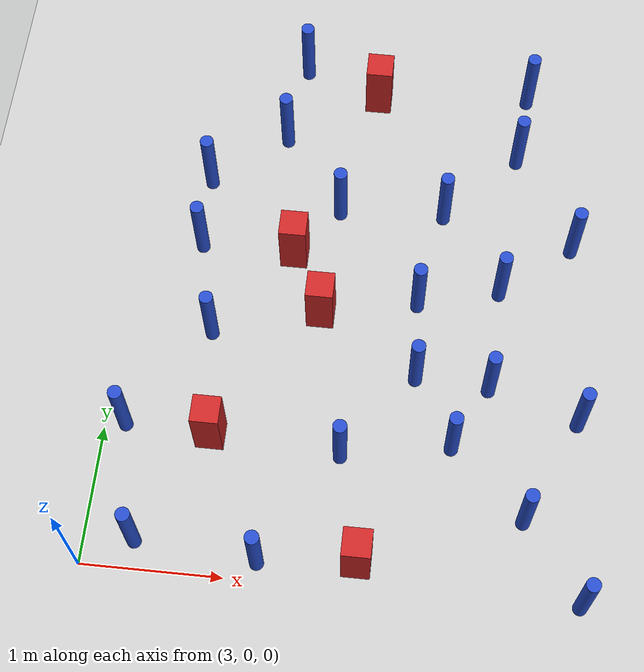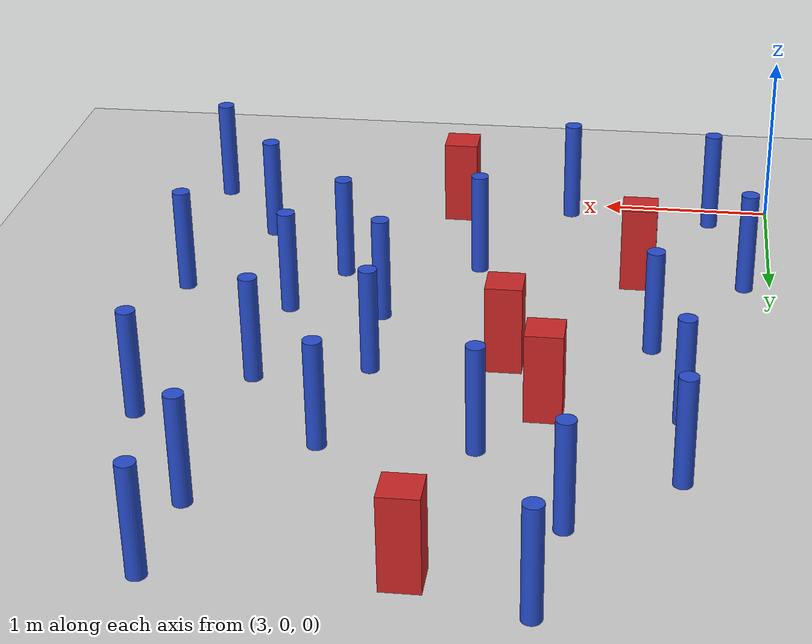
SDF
<sdf version="1.6">
 <world name="default">
  <model name="ground_plane">
   <static>1</static>
   <link name="link">
    <collision name="collision">
     <geometry><plane><normal>0 0 1</normal><size>100 100</size></plane></geometry>
     <surface><friction><ode><mu>100</mu><mu2>50</mu2></ode></friction></surface>
    </collision>
    <visual name="visual">
     <cast_shadows>0</cast_shadows>
     <geometry><plane><normal>0 0 1</normal><size>100 100</size></plane></geometry>
     <material>
      <ambient>1.0 1.0 1.0 1.0</ambient>
      <diffuse>0.8 0.8 0.8 1.0</diffuse>
      <specular>0.01 0.01 0.01 1.000000</specular>
     </material>
    </visual>
   </link>
  </model>
  <model name="pole_obstacle4">
   <static>true</static>
   <pose>3.4753207857 3.11598202601 7.38925637345e-09 -8.47170692798e-08 1.24976764939e-08 -1.74513093025e-07</pose>
   <link name="link">
    <pose>0 0 0.3 0 -0 0</pose>
    <inertial>
     <mass>1</mass>
     <inertia><ixx>0.145833</ixx><ixy>0</ixy><ixz>0</ixz><iyy>0.145833</iyy><iyz>0</iyz><izz>0.125</izz></inertia>
    </inertial>
    <collision name="collision">
     <geometry><cylinder><radius>0.05</radius><length>.6</length></cylinder></geometry>
    </collision>
    <visual name="visual">
     <geometry><cylinder><radius>0.05</radius><length>.6</length></cylinder></geometry>
     <material>
      <script><name>Gazebo/Blue</name><uri>file://media/materials/scripts/gazebo.material</uri></script>
     </material>
    </visual>
   </link>
  </model>
  <model name="square_post_obstacle7">
   <static>true</static>
   <pose>4.19259915789 2.54085804016 1.91545236811e-07 -7.35059704564e-06 1.12565212e-07 2.39332434364e-05</pose>
   <link name="link">
    <pose>0 0 0.25 0 -0 0</pose>
    <inertial>
     <mass>100</mass>
     <inertia>
      <ixx>0.166667</ixx>
      <ixy>0</ixy>
      <ixz>0</ixz>
      <iyy>0.166667</iyy>
      <iyz>0</iyz>
      <izz>0.166667</izz>
     </inertia>
    </inertial>
    <collision name="collision"><geometry><box><size>.2 .2 .5</size></box></geometry></collision>
    <visual name="visual">
     <geometry><box><size>.2 .2 .5</size></box></geometry>
     <material>
      <script><name>Gazebo/Red</name><uri>file://media/materials/scripts/gazebo.material</uri></script>
     </material>
    </visual>
   </link>
  </model>
  <model name="pole_obstacle12">
   <static>true</static>
   <pose>6.36594659354 1.35749647897 7.38925637345e-09 -8.471706928e-08 1.24976765134e-08 -1.74513093015e-07</pose>
   <link name="link">
    <pose>0 0 0.3 0 -0 0</pose>
    <inertial>
     <mass>1</mass>
     <inertia><ixx>0.145833</ixx><ixy>0</ixy><ixz>0</ixz><iyy>0.145833</iyy><iyz>0</iyz><izz>0.125</izz></inertia>
    </inertial>
    <collision name="collision">
     <geometry><cylinder><radius>0.05</radius><length>.6</length></cylinder></geometry>
    </collision>
    <visual name="visual">
     <geometry><cylinder><radius>0.05</radius><length>.6</length></cylinder></geometry>
     <material>
      <script><name>Gazebo/Blue</name><uri>file://media/materials/scripts/gazebo.material</uri></script>
     </material>
    </visual>
   </link>
  </model>
  <model name="pole_obstacle15">
   <static>true</static>
   <pose>3.6611542165 1.82092345411 7.38925637345e-09 -8.471706928e-08 1.24976765152e-08 -1.74513093012e-07</pose>
   <link name="link">
    <pose>0 0 0.3 0 -0 0</pose>
    <inertial>
     <mass>1</mass>
     <inertia><ixx>0.145833</ixx><ixy>0</ixy><ixz>0</ixz><iyy>0.145833</iyy><iyz>0</iyz><izz>0.125</izz></inertia>
    </inertial>
    <collision name="collision">
     <geometry><cylinder><radius>0.05</radius><length>.6</length></cylinder></geometry>
    </collision>
    <visual name="visual">
     <geometry><cylinder><radius>0.05</radius><length>.6</length></cylinder></geometry>
     <material>
      <script><name>Gazebo/Blue</name><uri>file://media/materials/scripts/gazebo.material</uri></script>
     </material>
    </visual>
   </link>
  </model>
  <model name="pole_obstacle21">
   <static>true</static>
   <pose>5.29207884988 2.97407495505 7.38925637345e-09 -8.47170692798e-08 1.24976764937e-08 -1.74513093023e-07</pose>
   <link name="link">
    <pose>0 0 0.3 0 -0 0</pose>
    <inertial>
     <mass>1</mass>
     <inertia><ixx>0.145833</ixx><ixy>0</ixy><ixz>0</ixz><iyy>0.145833</iyy><iyz>0</iyz><izz>0.125</izz></inertia>
    </inertial>
    <collision name="collision">
     <geometry><cylinder><radius>0.05</radius><length>.6</length></cylinder></geometry>
    </collision>
    <visual name="visual">
     <geometry><cylinder><radius>0.05</radius><length>.6</length></cylinder></geometry>
     <material>
      <script><name>Gazebo/Blue</name><uri>file://media/materials/scripts/gazebo.material</uri></script>
     </material>
    </visual>
   </link>
  </model>
  <model name="pole_obstacle22">
   <static>true</static>
   <pose>5.47900707221 1.08855759464 7.38925637345e-09 -8.471706928e-08 1.24976765134e-08 -1.74513093015e-07</pose>
   <link name="link">
    <pose>0 0 0.3 0 -0 0</pose>
    <inertial>
     <mass>1</mass>
     <inertia><ixx>0.145833</ixx><ixy>0</ixy><ixz>0</ixz><iyy>0.145833</iyy><iyz>0</iyz><izz>0.125</izz></inertia>
    </inertial>
    <collision name="collision">
     <geometry><cylinder><radius>0.05</radius><length>.6</length></cylinder></geometry>
    </collision>
    <visual name="visual">
     <geometry><cylinder><radius>0.05</radius><length>.6</length></cylinder></geometry>
     <material>
      <script><name>Gazebo/Blue</name><uri>file://media/materials/scripts/gazebo.material</uri></script>
     </material>
    </visual>
   </link>
  </model>
  <model name="pole_obstacle34">
   <static>true</static>
   <pose>5.82847256001 3.53852207408 7.38925637345e-09 -8.47170692798e-08 1.24976764937e-08 -1.74513093023e-07</pose>
   <link name="link">
    <pose>0 0 0.3 0 -0 0</pose>
    <inertial>
     <mass>1</mass>
     <inertia><ixx>0.145833</ixx><ixy>0</ixy><ixz>0</ixz><iyy>0.145833</iyy><iyz>0</iyz><izz>0.125</izz></inertia>
    </inertial>
    <collision name="collision">
     <geometry><cylinder><radius>0.05</radius><length>.6</length></cylinder></geometry>
    </collision>
    <visual name="visual">
     <geometry><cylinder><radius>0.05</radius><length>.6</length></cylinder></geometry>
     <material>
      <script><name>Gazebo/Blue</name><uri>file://media/materials/scripts/gazebo.material</uri></script>
     </material>
    </visual>
   </link>
  </model>
  <model name="pole_obstacle78">
   <static>true</static>
   <pose>6.01016642665 0.596015054051 7.38925637345e-09 -8.47170692799e-08 1.24976765038e-08 -1.74513093018e-07</pose>
   <link name="link">
    <pose>0 0 0.3 0 -0 0</pose>
    <inertial>
     <mass>1</mass>
     <inertia><ixx>0.145833</ixx><ixy>0</ixy><ixz>0</ixz><iyy>0.145833</iyy><iyz>0</iyz><izz>0.125</izz></inertia>
    </inertial>
    <collision name="collision">
     <geometry><cylinder><radius>0.05</radius><length>.6</length></cylinder></geometry>
    </collision>
    <visual name="visual">
     <geometry><cylinder><radius>0.05</radius><length>.6</length></cylinder></geometry>
     <material>
      <script><name>Gazebo/Blue</name><uri>file://media/materials/scripts/gazebo.material</uri></script>
     </material>
    </visual>
   </link>
  </model>
  <model name="pole_obstacle96">
   <static>true</static>
   <pose>3.35391686732 0.193663910173 7.38925637345e-09 -8.47170692801e-08 1.24976765195e-08 -1.74513093011e-07</pose>
   <link name="link">
    <pose>0 0 0.3 0 -0 0</pose>
    <inertial>
     <mass>1</mass>
     <inertia><ixx>0.145833</ixx><ixy>0</ixy><ixz>0</ixz><iyy>0.145833</iyy><iyz>0</iyz><izz>0.125</izz></inertia>
    </inertial>
    <collision name="collision">
     <geometry><cylinder><radius>0.05</radius><length>.6</length></cylinder></geometry>
    </collision>
    <visual name="visual">
     <geometry><cylinder><radius>0.05</radius><length>.6</length></cylinder></geometry>
     <material>
      <script><name>Gazebo/Blue</name><uri>file://media/materials/scripts/gazebo.material</uri></script>
     </material>
    </visual>
   </link>
  </model>
  <model name="square_post_obstacle95">
   <static>true</static>
   <pose>4.70060899639 4.02054487223 1.91545236811e-07 -7.35059704564e-06 1.12565212e-07 2.39332434364e-05</pose>
   <link name="link">
    <pose>0 0 0.25 0 -0 0</pose>
    <inertial>
     <mass>100</mass>
     <inertia>
      <ixx>0.166667</ixx>
      <ixy>0</ixy>
      <ixz>0</ixz>
      <iyy>0.166667</iyy>
      <iyz>0</iyz>
      <izz>0.166667</izz>
     </inertia>
    </inertial>
    <collision name="collision"><geometry><box><size>.2 .2 .5</size></box></geometry></collision>
    <visual name="visual">
     <geometry><box><size>.2 .2 .5</size></box></geometry>
     <material>
      <script><name>Gazebo/Red</name><uri>file://media/materials/scripts/gazebo.material</uri></script>
     </material>
    </visual>
   </link>
  </model>
  <model name="pole_obstacle119">
   <static>true</static>
   <pose>4.01920119011 3.56018556924 7.38925637345e-09 -8.47170692799e-08 1.24976765e-08 -1.7451309302e-07</pose>
   <link name="link">
    <pose>0 0 0.3 0 -0 0</pose>
    <inertial>
     <mass>1</mass>
     <inertia><ixx>0.145833</ixx><ixy>0</ixy><ixz>0</ixz><iyy>0.145833</iyy><iyz>0</iyz><izz>0.125</izz></inertia>
    </inertial>
    <collision name="collision">
     <geometry><cylinder><radius>0.05</radius><length>.6</length></cylinder></geometry>
    </collision>
    <visual name="visual">
     <geometry><cylinder><radius>0.05</radius><length>.6</length></cylinder></geometry>
     <material>
      <script><name>Gazebo/Blue</name><uri>file://media/materials/scripts/gazebo.material</uri></script>
     </material>
    </visual>
   </link>
  </model>
  <model name="pole_obstacle131">
   <static>true</static>
   <pose>5.75321398918 2.354576415 7.38925637345e-09 -8.47170692798e-08 1.24976764937e-08 -1.74513093023e-07</pose>
   <link name="link">
    <pose>0 0 0.3 0 -0 0</pose>
    <inertial>
     <mass>1</mass>
     <inertia><ixx>0.145833</ixx><ixy>0</ixy><ixz>0</ixz><iyy>0.145833</iyy><iyz>0</iyz><izz>0.125</izz></inertia>
    </inertial>
    <collision name="collision">
     <geometry><cylinder><radius>0.05</radius><length>.6</length></cylinder></geometry>
    </collision>
    <visual name="visual">
     <geometry><cylinder><radius>0.05</radius><length>.6</length></cylinder></geometry>
     <material>
      <script><name>Gazebo/Blue</name><uri>file://media/materials/scripts/gazebo.material</uri></script>
     </material>
    </visual>
   </link>
  </model>
  <model name="square_post_obstacle123">
   <static>true</static>
   <pose>3.76766822107 1.02142883052 1.91545236811e-07 -7.35059704564e-06 1.12565212e-07 2.39332434364e-05</pose>
   <link name="link">
    <pose>0 0 0.25 0 -0 0</pose>
    <inertial>
     <mass>100</mass>
     <inertia>
      <ixx>0.166667</ixx>
      <ixy>0</ixy>
      <ixz>0</ixz>
      <iyy>0.166667</iyy>
      <iyz>0</iyz>
      <izz>0.166667</izz>
     </inertia>
    </inertial>
    <collision name="collision"><geometry><box><size>.2 .2 .5</size></box></geometry></collision>
    <visual name="visual">
     <geometry><box><size>.2 .2 .5</size></box></geometry>
     <material>
      <script><name>Gazebo/Red</name><uri>file://media/materials/scripts/gazebo.material</uri></script>
     </material>
    </visual>
   </link>
  </model>
  <model name="pole_obstacle142">
   <static>true</static>
   <pose>3.48668480515 2.54363415938 7.38925637345e-09 -8.47170692798e-08 1.24976764939e-08 -1.74513093025e-07</pose>
   <link name="link">
    <pose>0 0 0.3 0 -0 0</pose>
    <inertial>
     <mass>1</mass>
     <inertia><ixx>0.145833</ixx><ixy>0</ixy><ixz>0</ixz><iyy>0.145833</iyy><iyz>0</iyz><izz>0.125</izz></inertia>
    </inertial>
    <collision name="collision">
     <geometry><cylinder><radius>0.05</radius><length>.6</length></cylinder></geometry>
    </collision>
    <visual name="visual">
     <geometry><cylinder><radius>0.05</radius><length>.6</length></cylinder></geometry>
     <material>
      <script><name>Gazebo/Blue</name><uri>file://media/materials/scripts/gazebo.material</uri></script>
     </material>
    </visual>
   </link>
  </model>
  <model name="pole_obstacle148">
   <static>true</static>
   <pose>4.10869115487 4.23374073923 7.38925637345e-09 -8.47170692796e-08 1.24976764786e-08 -1.74513093032e-07</pose>
   <link name="link">
    <pose>0 0 0.3 0 -0 0</pose>
    <inertial>
     <mass>1</mass>
     <inertia><ixx>0.145833</ixx><ixy>0</ixy><ixz>0</ixz><iyy>0.145833</iyy><iyz>0</iyz><izz>0.125</izz></inertia>
    </inertial>
    <collision name="collision">
     <geometry><cylinder><radius>0.05</radius><length>.6</length></cylinder></geometry>
    </collision>
    <visual name="visual">
     <geometry><cylinder><radius>0.05</radius><length>.6</length></cylinder></geometry>
     <material>
      <script><name>Gazebo/Blue</name><uri>file://media/materials/scripts/gazebo.material</uri></script>
     </material>
    </visual>
   </link>
  </model>
  <model name="pole_obstacle149">
   <static>true</static>
   <pose>5.71678005131 1.56332053617 7.38925637345e-09 -8.471706928e-08 1.24976765134e-08 -1.74513093015e-07</pose>
   <link name="link">
    <pose>0 0 0.3 0 -0 0</pose>
    <inertial>
     <mass>1</mass>
     <inertia><ixx>0.145833</ixx><ixy>0</ixy><ixz>0</ixz><iyy>0.145833</iyy><iyz>0</iyz><izz>0.125</izz></inertia>
    </inertial>
    <collision name="collision">
     <geometry><cylinder><radius>0.05</radius><length>.6</length></cylinder></geometry>
    </collision>
    <visual name="visual">
     <geometry><cylinder><radius>0.05</radius><length>.6</length></cylinder></geometry>
     <material>
      <script><name>Gazebo/Blue</name><uri>file://media/materials/scripts/gazebo.material</uri></script>
     </material>
    </visual>
   </link>
  </model>
  <model name="pole_obstacle157">
   <static>true</static>
   <pose>3.14970973654 1.04014739575 7.38925637345e-09 -8.47170692793e-08 1.2497676438e-08 -1.74513093043e-07</pose>
   <link name="link">
    <pose>0 0 0.3 0 -0 0</pose>
    <inertial>
     <mass>1</mass>
     <inertia><ixx>0.145833</ixx><ixy>0</ixy><ixz>0</ixz><iyy>0.145833</iyy><iyz>0</iyz><izz>0.125</izz></inertia>
    </inertial>
    <collision name="collision">
     <geometry><cylinder><radius>0.05</radius><length>.6</length></cylinder></geometry>
    </collision>
    <visual name="visual">
     <geometry><cylinder><radius>0.05</radius><length>.6</length></cylinder></geometry>
     <material>
      <script><name>Gazebo/Blue</name><uri>file://media/materials/scripts/gazebo.material</uri></script>
     </material>
    </visual>
   </link>
  </model>
  <model name="pole_obstacle161">
   <static>true</static>
   <pose>4.50021784292 2.93690601603 7.38925637345e-09 -8.47170692798e-08 1.24976764937e-08 -1.74513093023e-07</pose>
   <link name="link">
    <pose>0 0 0.3 0 -0 0</pose>
    <inertial>
     <mass>1</mass>
     <inertia><ixx>0.145833</ixx><ixy>0</ixy><ixz>0</ixz><iyy>0.145833</iyy><iyz>0</iyz><izz>0.125</izz></inertia>
    </inertial>
    <collision name="collision">
     <geometry><cylinder><radius>0.05</radius><length>.6</length></cylinder></geometry>
    </collision>
    <visual name="visual">
     <geometry><cylinder><radius>0.05</radius><length>.6</length></cylinder></geometry>
     <material>
      <script><name>Gazebo/Blue</name><uri>file://media/materials/scripts/gazebo.material</uri></script>
     </material>
    </visual>
   </link>
  </model>
  <model name="pole_obstacle168">
   <static>true</static>
   <pose>6.41914053952 0.0401477946493 7.38925637345e-09 -8.471706928e-08 1.24976765155e-08 -1.74513093014e-07</pose>
   <link name="link">
    <pose>0 0 0.3 0 -0 0</pose>
    <inertial>
     <mass>1</mass>
     <inertia><ixx>0.145833</ixx><ixy>0</ixy><ixz>0</ixz><iyy>0.145833</iyy><iyz>0</iyz><izz>0.125</izz></inertia>
    </inertial>
    <collision name="collision">
     <geometry><cylinder><radius>0.05</radius><length>.6</length></cylinder></geometry>
    </collision>
    <visual name="visual">
     <geometry><cylinder><radius>0.05</radius><length>.6</length></cylinder></geometry>
     <material>
      <script><name>Gazebo/Blue</name><uri>file://media/materials/scripts/gazebo.material</uri></script>
     </material>
    </visual>
   </link>
  </model>
  <model name="pole_obstacle172">
   <static>true</static>
   <pose>4.21222684725 0.126250132426 7.38925637345e-09 -8.47170692801e-08 1.24976765186e-08 -1.74513093012e-07</pose>
   <link name="link">
    <pose>0 0 0.3 0 -0 0</pose>
    <inertial>
     <mass>1</mass>
     <inertia><ixx>0.145833</ixx><ixy>0</ixy><ixz>0</ixz><iyy>0.145833</iyy><iyz>0</iyz><izz>0.125</izz></inertia>
    </inertial>
    <collision name="collision">
     <geometry><cylinder><radius>0.05</radius><length>.6</length></cylinder></geometry>
    </collision>
    <visual name="visual">
     <geometry><cylinder><radius>0.05</radius><length>.6</length></cylinder></geometry>
     <material>
      <script><name>Gazebo/Blue</name><uri>file://media/materials/scripts/gazebo.material</uri></script>
     </material>
    </visual>
   </link>
  </model>
  <model name="square_post_obstacle166">
   <static>true</static>
   <pose>4.89168215768 0.193719007267 1.91545236811e-07 -7.35059704564e-06 1.12565212e-07 2.39332434364e-05</pose>
   <link name="link">
    <pose>0 0 0.25 0 -0 0</pose>
    <inertial>
     <mass>100</mass>
     <inertia>
      <ixx>0.166667</ixx>
      <ixy>0</ixy>
      <ixz>0</ixz>
      <iyy>0.166667</iyy>
      <iyz>0</iyz>
      <izz>0.166667</izz>
     </inertia>
    </inertial>
    <collision name="collision"><geometry><box><size>.2 .2 .5</size></box></geometry></collision>
    <visual name="visual">
     <geometry><box><size>.2 .2 .5</size></box></geometry>
     <material>
      <script><name>Gazebo/Red</name><uri>file://media/materials/scripts/gazebo.material</uri></script>
     </material>
    </visual>
   </link>
  </model>
  <model name="square_post_obstacle187">
   <static>true</static>
   <pose>4.4434001883 2.05645381193 1.91545236811e-07 -7.35059704564e-06 1.12565212e-07 2.39332434364e-05</pose>
   <link name="link">
    <pose>0 0 0.25 0 -0 0</pose>
    <inertial>
     <mass>100</mass>
     <inertia>
      <ixx>0.166667</ixx>
      <ixy>0</ixy>
      <ixz>0</ixz>
      <iyy>0.166667</iyy>
      <iyz>0</iyz>
      <izz>0.166667</izz>
     </inertia>
    </inertial>
    <collision name="collision"><geometry><box><size>.2 .2 .5</size></box></geometry></collision>
    <visual name="visual">
     <geometry><box><size>.2 .2 .5</size></box></geometry>
     <material>
      <script><name>Gazebo/Red</name><uri>file://media/materials/scripts/gazebo.material</uri></script>
     </material>
    </visual>
   </link>
  </model>
  <model name="pole_obstacle196">
   <static>true</static>
   <pose>6.27702254465 2.77725074737 7.38925637345e-09 -8.47170692798e-08 1.24976764937e-08 -1.74513093023e-07</pose>
   <link name="link">
    <pose>0 0 0.3 0 -0 0</pose>
    <inertial>
     <mass>1</mass>
     <inertia><ixx>0.145833</ixx><ixy>0</ixy><ixz>0</ixz><iyy>0.145833</iyy><iyz>0</iyz><izz>0.125</izz></inertia>
    </inertial>
    <collision name="collision">
     <geometry><cylinder><radius>0.05</radius><length>.6</length></cylinder></geometry>
    </collision>
    <visual name="visual">
     <geometry><cylinder><radius>0.05</radius><length>.6</length></cylinder></geometry>
     <material>
      <script><name>Gazebo/Blue</name><uri>file://media/materials/scripts/gazebo.material</uri></script>
     </material>
    </visual>
   </link>
  </model>
  <model name="pole_obstacle203">
   <static>true</static>
   <pose>5.8858728784 4.1187089224 7.38925637345e-09 -8.47170692796e-08 1.24976764786e-08 -1.74513093032e-07</pose>
   <link name="link">
    <pose>0 0 0.3 0 -0 0</pose>
    <inertial>
     <mass>1</mass>
     <inertia><ixx>0.145833</ixx><ixy>0</ixy><ixz>0</ixz><iyy>0.145833</iyy><iyz>0</iyz><izz>0.125</izz></inertia>
    </inertial>
    <collision name="collision">
     <geometry><cylinder><radius>0.05</radius><length>.6</length></cylinder></geometry>
    </collision>
    <visual name="visual">
     <geometry><cylinder><radius>0.05</radius><length>.6</length></cylinder></geometry>
     <material>
      <script><name>Gazebo/Blue</name><uri>file://media/materials/scripts/gazebo.material</uri></script>
     </material>
    </visual>
   </link>
  </model>
  <model name="pole_obstacle207">
   <static>true</static>
   <pose>5.15161181646 2.19750387083 7.38925637345e-09 -8.47170692798e-08 1.24976764937e-08 -1.74513093023e-07</pose>
   <link name="link">
    <pose>0 0 0.3 0 -0 0</pose>
    <inertial>
     <mass>1</mass>
     <inertia><ixx>0.145833</ixx><ixy>0</ixy><ixz>0</ixz><iyy>0.145833</iyy><iyz>0</iyz><izz>0.125</izz></inertia>
    </inertial>
    <collision name="collision">
     <geometry><cylinder><radius>0.05</radius><length>.6</length></cylinder></geometry>
    </collision>
    <visual name="visual">
     <geometry><cylinder><radius>0.05</radius><length>.6</length></cylinder></geometry>
     <material>
      <script><name>Gazebo/Blue</name><uri>file://media/materials/scripts/gazebo.material</uri></script>
     </material>
    </visual>
   </link>
  </model>
  <model name="pole_obstacle209">
   <static>true</static>
   <pose>4.70050835746 0.950989069642 7.38925637345e-09 -8.471706928e-08 1.24976765166e-08 -1.74513093011e-07</pose>
   <link name="link">
    <pose>0 0 0.3 0 -0 0</pose>
    <inertial>
     <mass>1</mass>
     <inertia><ixx>0.145833</ixx><ixy>0</ixy><ixz>0</ixz><iyy>0.145833</iyy><iyz>0</iyz><izz>0.125</izz></inertia>
    </inertial>
    <collision name="collision">
     <geometry><cylinder><radius>0.05</radius><length>.6</length></cylinder></geometry>
    </collision>
    <visual name="visual">
     <geometry><cylinder><radius>0.05</radius><length>.6</length></cylinder></geometry>
     <material>
      <script><name>Gazebo/Blue</name><uri>file://media/materials/scripts/gazebo.material</uri></script>
     </material>
    </visual>
   </link>
  </model>
  <model name="pole_obstacle212">
   <static>true</static>
   <pose>5.18268755363 1.59778263589 7.38925637345e-09 -8.471706928e-08 1.24976765134e-08 -1.74513093015e-07</pose>
   <link name="link">
    <pose>0 0 0.3 0 -0 0</pose>
    <inertial>
     <mass>1</mass>
     <inertia><ixx>0.145833</ixx><ixy>0</ixy><ixz>0</ixz><iyy>0.145833</iyy><iyz>0</iyz><izz>0.125</izz></inertia>
    </inertial>
    <collision name="collision">
     <geometry><cylinder><radius>0.05</radius><length>.6</length></cylinder></geometry>
    </collision>
    <visual name="visual">
     <geometry><cylinder><radius>0.05</radius><length>.6</length></cylinder></geometry>
     <material>
      <script><name>Gazebo/Blue</name><uri>file://media/materials/scripts/gazebo.material</uri></script>
     </material>
    </visual>
   </link>
  </model>
 </world>
</sdf>
